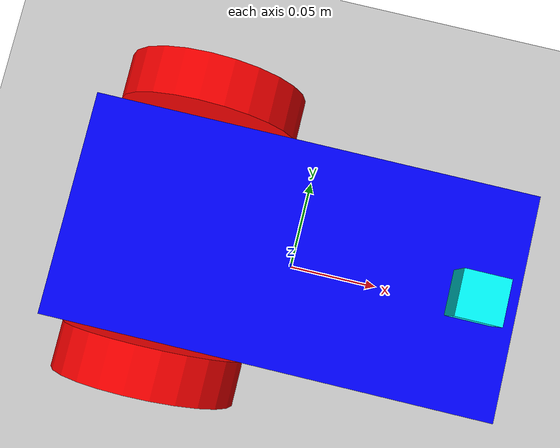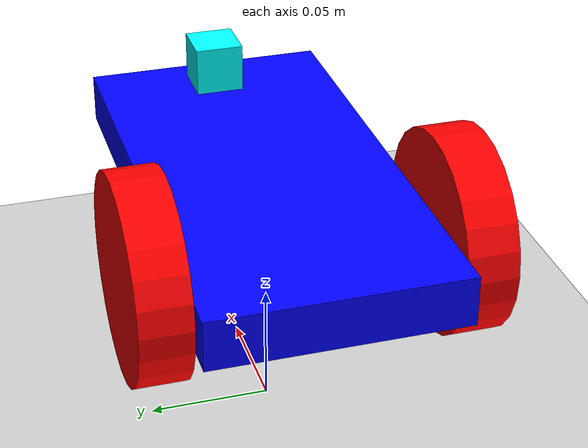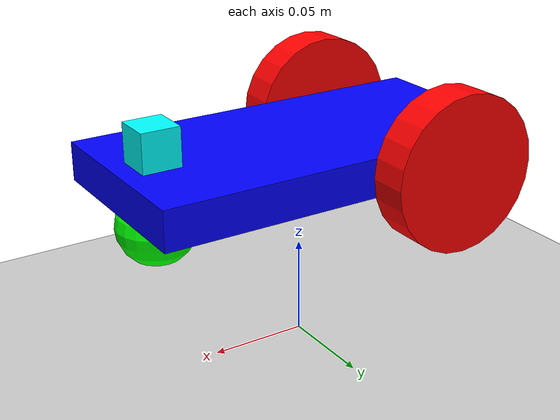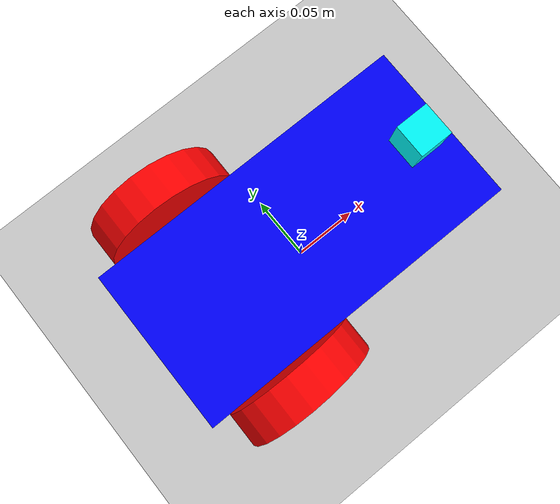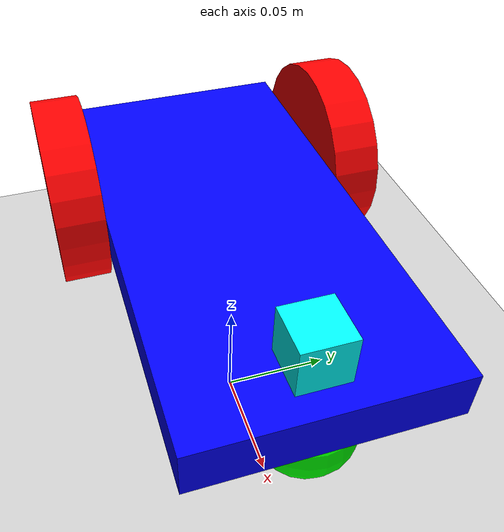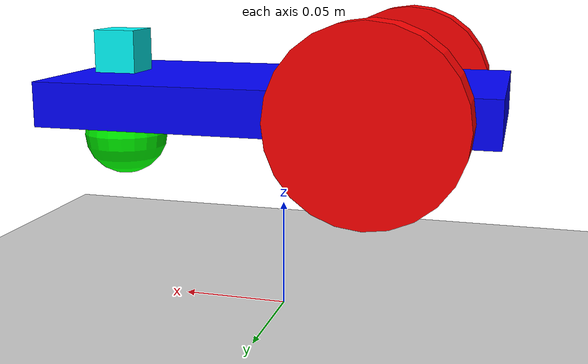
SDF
<sdf version="1.10">
 <world name="demo">
  <light name="sun" type="directional">
   <pose>0 0 10 0 0 0</pose>
   <diffuse>0.8 0.8 0.8 1</diffuse>
   <specular>0.2 0.2 0.2 1</specular>
   <attenuation>
    <range>1000</range>
    <constant>0.9</constant>
    <linear>0.01</linear>
    <quadratic>0.001</quadratic>
   </attenuation>
   <direction>-0.5 0.1 -0.9</direction>
  </light>
  <model name="ground_plane">
   <static>true</static>
   <link name="link">
    <collision name="collision">
     <geometry><plane><normal>0 0 1</normal><size>100 100</size></plane></geometry>
    </collision>
    <visual name="visual">
     <geometry><plane><normal>0 0 1</normal><size>100 100</size></plane></geometry>
     <material>
      <ambient>0.8 0.8 0.8 1</ambient>
      <diffuse>0.8 0.8 0.8 1</diffuse>
      <specular>0.8 0.8 0.8 1</specular>
     </material>
    </visual>
   </link>
  </model>
  <frame name="map"/>
  <model name="car">
   <self_collide>true</self_collide>
   <pose relative_to="map">0 0 0 0 0 0</pose>
   <include merge="true"><uri>car</uri></include>
   <plugin filename="gz-sim-joint-state-publisher-system" name="gz::sim::systems::JointStatePublisher"/>
   <plugin filename="gz-sim-pose-publisher-system" name="gz::sim::systems::PosePublisher">
    <publish_link_pose>true</publish_link_pose>
    <use_pose_vector_msg>true</use_pose_vector_msg>
    <static_publisher>true</static_publisher>
   </plugin>
   <plugin filename="gz-sim-odometry-publisher-system" name="gz::sim::systems::OdometryPublisher">
    <odom_frame>car/odom</odom_frame>
    <robot_base_frame>car</robot_base_frame>
   </plugin>
  </model>
 </world>
</sdf>

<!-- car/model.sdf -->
<sdf version="1.11">
    <model name='car' canonical_link='chassis'>

        <!--chassis-->
        <link name='chassis'>
            <pose relative_to='__model__'>0 0 0.1 0 0 0</pose>
            <inertial> <!--inertial properties of the link mass, inertia matix-->
                <mass>1.14395</mass>
                <inertia>
                    <ixx>0.095329</ixx>
                    <ixy>0</ixy>
                    <ixz>0</ixz>
                    <iyy>0.381317</iyy>
                    <iyz>0</iyz>
                    <izz>0.476646</izz>
                </inertia>
            </inertial>
            <visual name='visual'>
                <geometry>
                    <box>
                        <size>0.2 0.1 0.02</size>
                    </box>
                </geometry>
                <!--Color of the link-->
                <material>
                    <ambient>0.0 0.0 1.0 1</ambient>
                    <diffuse>0.0 0.0 1.0 1</diffuse>
                    <specular>0.0 0.0 1.0 1</specular>
                </material>
            </visual>
            <collision name='collision'>
                <geometry>
                    <box>
                        <size>0.2 0.1 0.02</size>
                    </box>
                </geometry>
            </collision>
        </link>

        <!--Left wheel-->
        <link name='left_wheel'>
            <pose relative_to="chassis">-0.05 0.06 0 -1.5707 0 0</pose> <!--angles are in radian-->
            <inertial>
                <mass>1</mass>
                <inertia>
                    <ixx>0.043333</ixx>
                    <ixy>0</ixy>
                    <ixz>0</ixz>
                    <iyy>0.043333</iyy>
                    <iyz>0</iyz>
                    <izz>0.08</izz>
                </inertia>
            </inertial>
            <visual name='visual'>
                <geometry>
                    <cylinder>
                        <radius>0.04</radius>
                        <length>0.02</length>
                    </cylinder>
                </geometry>
                <material>
                    <ambient>1.0 0.0 0.0 1</ambient>
                    <diffuse>1.0 0.0 0.0 1</diffuse>
                    <specular>1.0 0.0 0.0 1</specular>
                </material>
            </visual>
            <collision name='collision'>
                <geometry>
                    <cylinder>
                        <radius>0.04</radius>
                        <length>0.02</length>
                    </cylinder>
                </geometry>
            </collision>
        </link>

        <!--The same as left wheel but with different position-->
        <link name='right_wheel'>
            <pose relative_to="chassis">-0.05 -0.06 0 -1.5707 0 0</pose> <!--angles are in radian-->
            <inertial>
                <mass>1</mass>
                <inertia>
                    <ixx>0.043333</ixx>
                    <ixy>0</ixy>
                    <ixz>0</ixz>
                    <iyy>0.043333</iyy>
                    <iyz>0</iyz>
                    <izz>0.08</izz>
                </inertia>
            </inertial>
            <visual name='visual'>
                <geometry>
                    <cylinder>
                        <radius>0.04</radius>
                        <length>0.02</length>
                    </cylinder>
                </geometry>
                <material>
                    <ambient>1.0 0.0 0.0 1</ambient>
                    <diffuse>1.0 0.0 0.0 1</diffuse>
                    <specular>1.0 0.0 0.0 1</specular>
                </material>
            </visual>
            <collision name='collision'>
                <geometry>
                    <cylinder>
                        <radius>0.04</radius>
                        <length>0.02</length>
                    </cylinder>
                </geometry>
            </collision>
        </link>

        <!--arbitrary frame-->
        <frame name="caster_frame" attached_to='chassis'>
            <pose relative_to='chassis'>0.08 0 -0.02 0 0 0</pose>
        </frame>

        <!--caster wheel-->
        <link name='caster'>
            <pose relative_to='caster_frame'/>
            <inertial>
                <mass>1</mass>
                <inertia>
                    <ixx>0.016</ixx>
                    <ixy>0</ixy>
                    <ixz>0</ixz>
                    <iyy>0.016</iyy>
                    <iyz>0</iyz>
                    <izz>0.016</izz>
                </inertia>
            </inertial>
            <visual name='visual'>
                <geometry>
                    <sphere>
                        <radius>0.02</radius>
                    </sphere>
                </geometry>
                <material>
                    <ambient>0.0 1 0.0 1</ambient>
                    <diffuse>0.0 1 0.0 1</diffuse>
                    <specular>0.0 1 0.0 1</specular>
                </material>
            </visual>
            <collision name='collision'>
                <geometry>
                    <sphere>
                        <radius>0.02</radius>
                    </sphere>
                </geometry>
            </collision>
        </link>

        <!--left wheel joint-->
        <joint name='left_wheel_joint' type='revolute'>
            <pose relative_to='left_wheel'/>
            <parent>chassis</parent>
            <child>left_wheel</child>
            <axis>
                <xyz expressed_in='__model__'>0 1 0</xyz> <!--can be descired to any frame or even arbitrary frames-->
                <limit>
                    <lower>-1.79769e+308</lower>    <!--negative infinity-->
                    <upper>1.79769e+308</upper>     <!--positive infinity-->
                </limit>
            </axis>
        </joint>

        <!--right wheel joint-->
        <joint name='right_wheel_joint' type='revolute'>
            <pose relative_to='right_wheel'/>
            <parent>chassis</parent>
            <child>right_wheel</child>
            <axis>
                <xyz expressed_in='__model__'>0 1 0</xyz>
                <limit>
                    <lower>-1.79769e+308</lower>    <!--negative infinity-->
                    <upper>1.79769e+308</upper>     <!--positive infinity-->
                </limit>
            </axis>
        </joint>

        <!--caster wheel joint--> <!--pose defult value is the child-->
        <joint name='caster_joint' type='ball'>
            <parent>chassis</parent>
            <child>caster</child>
        </joint>

        <plugin filename="gz-sim-diff-drive-system" name="gz::sim::systems::DiffDrive">
            <left_joint>left_wheel_joint</left_joint>
            <right_joint>right_wheel_joint</right_joint>
            <wheel_separation>1.2</wheel_separation>
            <wheel_radius>0.4</wheel_radius>
            <odom_publish_frequency>1</odom_publish_frequency>
        </plugin>

        <plugin filename="gz-sim-sensors-system" name="gz::sim::systems::Sensors">
            <render_engine>ogre2</render_engine>
        </plugin>

        <link name="rgbd_frame">
            <pose relative_to="sensor">0.02 0 0 0 0 0</pose>
        </link>

        <link name="sensor">
            <pose relative_to='chassis'>0.08 0 0.02 0 0 0</pose>
            <inertial auto="true">
                <density>100</density>
            </inertial>
            <collision name="collisional">
                <geometry>
                    <box>
                        <size>0.02 0.02 0.02</size>
                    </box>
                </geometry>
            </collision>
            <visual name="visual1">
                <geometry>
                    <box>
                        <size>0.02 0.02 0.02</size>
                    </box>
                </geometry>
                <material>
                    <ambient>0.0 1.0 1.0 1</ambient>
                    <diffuse>0.0 1.0 1.0 1</diffuse>
                    <specular>0.0 1.0 1.0 1</specular>
                </material>
            </visual>

            <sensor name="rgbd" type="rgbd_camera">
                <camera>
                    <optical_frame_id>car/rgbd_frame</optical_frame_id>
                    <horizontal_fov>1.047</horizontal_fov>
                    <image>
                    <width>320</width>
                    <height>240</height>
                    </image>
                    <clip>
                    <near>0.1</near>
                    <far>100</far>
                    </clip>
                </camera>
                <always_on>1</always_on>
                <update_rate>30</update_rate>
                <visualize>true</visualize>
                <topic>model/car/sensor/rgbd</topic>
                <enable_metrics>true</enable_metrics>
            </sensor>

            <sensor name='lidar' type='gpu_lidar'>"
                <gz_frame_id>car/sensor</gz_frame_id>
                <pose relative_to="sensor">0 0 0.02 0 0 0</pose>
                <topic>model/car/sensor/lidar</topic>
                <update_rate>10</update_rate>
                <ray>
                    <scan>
                        <horizontal>
                            <samples>360</samples>
                            <resolution>1</resolution>
                            <min_angle>0.0</min_angle>
                            <max_angle>6.28</max_angle>
                        </horizontal>
                    </scan>
                    <range>
                        <min>0.12</min>
                        <max>3.5</max>
                        <resolution>0.015</resolution>
                    </range>
                </ray>
                <always_on>1</always_on>
                <visualize>true</visualize>
            </sensor>
        </link>

        <joint name="sensor_joint" type="fixed">
            <parent>chassis</parent>
            <child>sensor</child>
        </joint>

        <joint name="rgbd_joint" type="fixed">
            <parent>sensor</parent>
            <child>rgbd_frame</child>
        </joint>

    </model>
</sdf>
